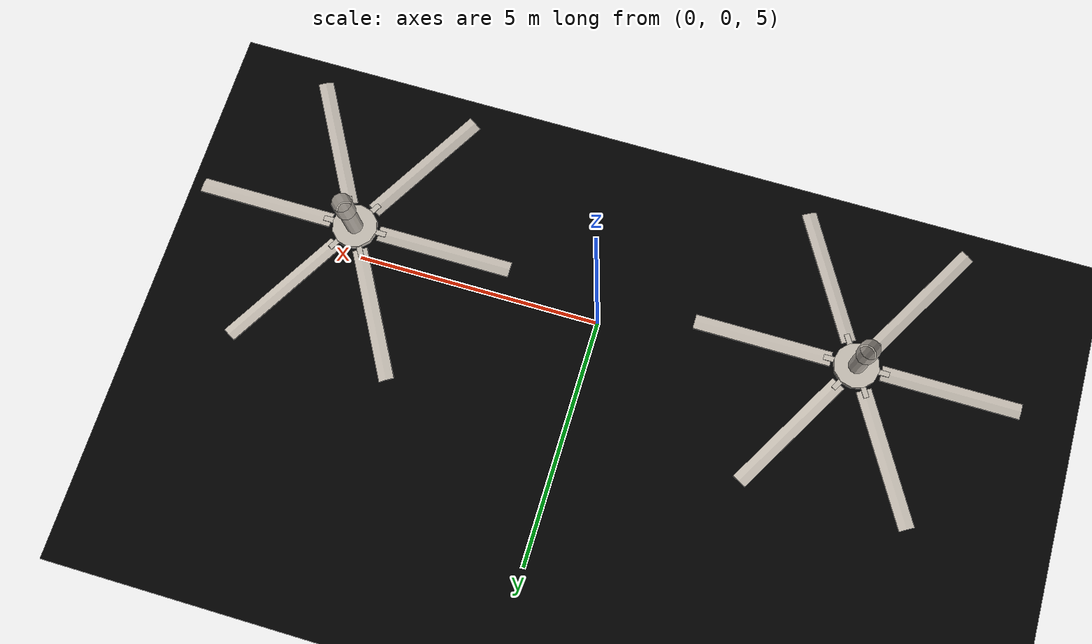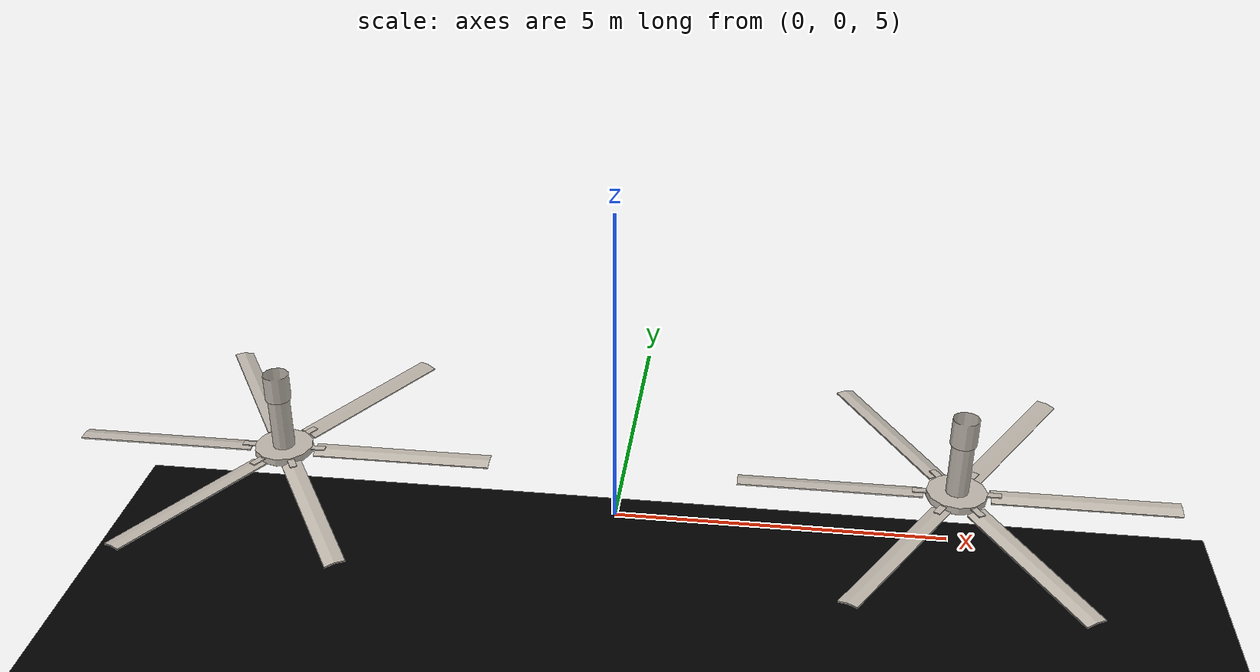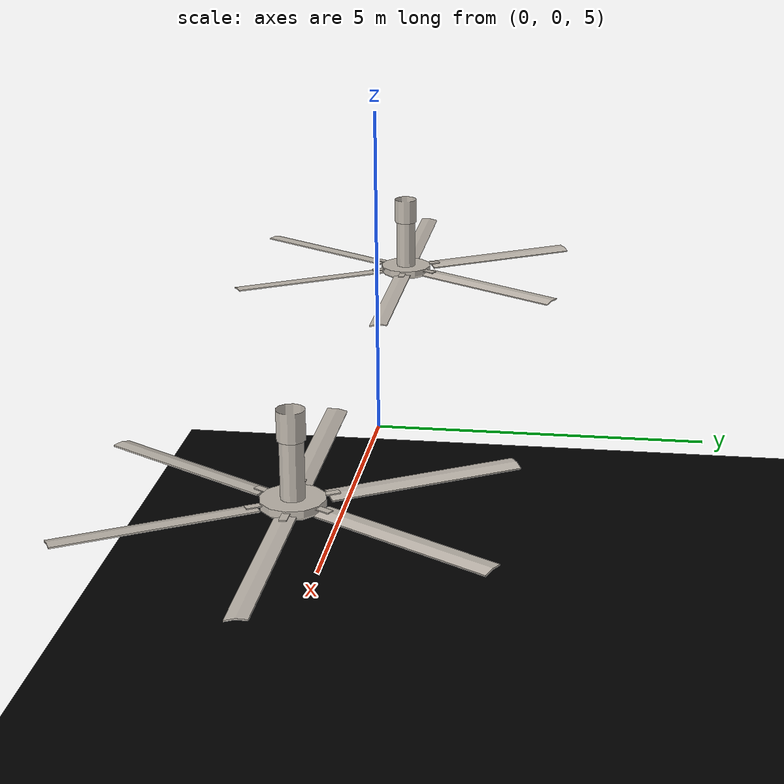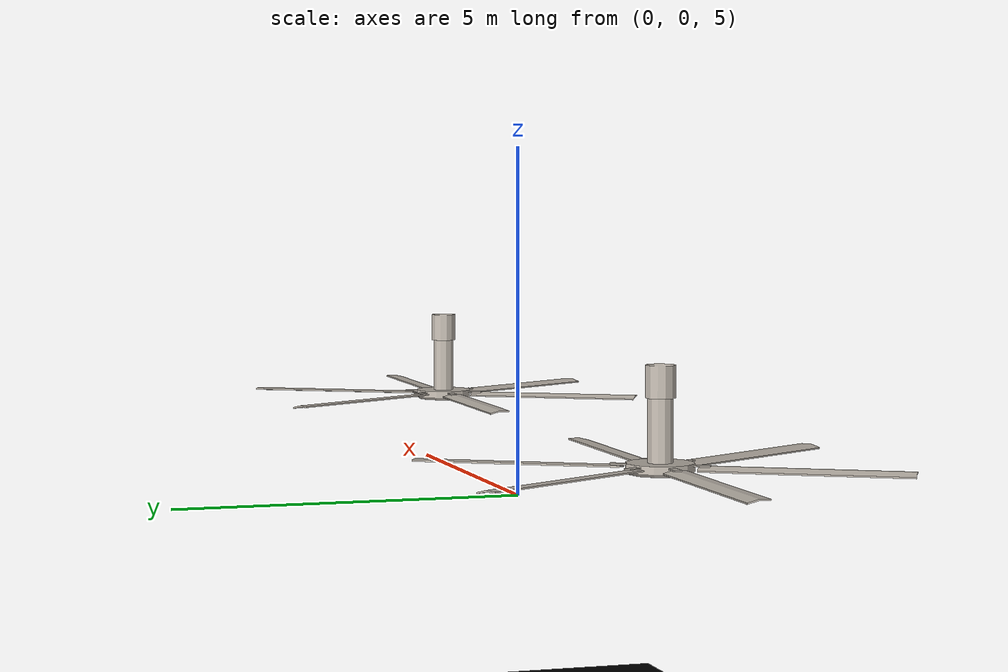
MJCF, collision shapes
<mujoco model="Depot">
  <compiler angle="radian" meshdir="assets/" texturedir="assets/"/>

  <visual>
    <headlight ambient="0.3 0.3 0.3"/>
  </visual>

  <asset>
    <texture type="2d" colorspace="linear" name="scene_tex_src_0" file="ROOF_Albedo.png"/>
    <texture type="2d" colorspace="linear" name="scene_tex_src_1" file="WALLS_Albedo.png"/>
    <texture type="2d" colorspace="linear" name="scene_tex_src_2" file="PILLERS_Albedo.png"/>
    <texture type="2d" colorspace="linear" name="scene_tex_src_3" file="FANS_Albedo.png"/>
    <texture type="2d" colorspace="linear" name="scene_tex_src_4" file="Window_WINDOW_BaseColor.png"/>
    <texture type="2d" colorspace="linear" name="scene_tex_src_5" file="INTERCOM_Albedo.png"/>
    <texture type="2d" colorspace="linear" name="scene_tex_src_6" file="FireAlarm_Albedo.png"/>
    <texture type="2d" colorspace="linear" name="scene_tex_src_7" file="FireAlarmPole_Albedo.png"/>
    <texture type="2d" colorspace="linear" name="scene_tex_src_8" file="Pipes_Albedo.png"/>
    <texture type="2d" colorspace="linear" name="scene_tex_src_9" file="STAIRS_Albedo.png"/>
    <texture type="2d" colorspace="linear" name="scene_tex_src_10" file="BOXSET_Albedo.png"/>
    <texture type="2d" colorspace="linear" name="scene_tex_src_11" file="FLOOR_Albedo.png"/>
    <texture type="2d" colorspace="linear" name="scene_tex_src_12" file="FanBack_FanBack_BaseColor.png"/>
    <texture type="2d" colorspace="linear" name="scene_tex_src_13" file="Crates_Crates_BaseColor.png"/>
    <material name="scene_mat_src_0" texture="scene_tex_src_0"/>
    <material name="scene_mat_src_1" texture="scene_tex_src_1"/>
    <material name="scene_mat_src_2" texture="scene_tex_src_2"/>
    <material name="scene_mat_src_3" texture="scene_tex_src_3"/>
    <material name="scene_mat_src_4" texture="scene_tex_src_4"/>
    <material name="scene_mat_src_5" texture="scene_tex_src_5"/>
    <material name="scene_mat_src_6" texture="scene_tex_src_6"/>
    <material name="scene_mat_src_7" texture="scene_tex_src_7"/>
    <material name="scene_mat_src_8" texture="scene_tex_src_8"/>
    <material name="scene_mat_src_9" texture="scene_tex_src_9"/>
    <material name="scene_mat_src_10" texture="scene_tex_src_10"/>
    <material name="scene_mat_src_11" texture="scene_tex_src_11"/>
    <material name="scene_mat_src_12" texture="scene_tex_src_12"/>
    <material name="scene_mat_src_13" texture="scene_tex_src_13"/>
    <mesh name="scene_Depot_main_ROOF_visual_vis" content_type="model/obj" file="Depot_main_ROOF_visual_vis.obj" inertia="shell"/>
    <mesh name="scene_Depot_main_WALLS_visual_vis" content_type="model/obj" file="Depot_main_WALLS_visual_vis.obj" inertia="shell"/>
    <mesh name="scene_Depot_main_PILLERS_visual_vis" content_type="model/obj" file="Depot_main_PILLERS_visual_vis.obj" inertia="shell"/>
    <mesh name="scene_Depot_main_FANS_visual_vis" content_type="model/obj" file="Depot_main_FANS_visual_vis.obj" inertia="shell"/>
    <mesh name="scene_Depot_main_WINDOW_visual_vis" content_type="model/obj" file="Depot_main_WINDOW_visual_vis.obj" inertia="shell"/>
    <mesh name="scene_Depot_main_INTERCOM_visual_vis" content_type="model/obj" file="Depot_main_INTERCOM_visual_vis.obj" inertia="shell"/>
    <mesh name="scene_Depot_main_FireAlarm_visual_vis" content_type="model/obj" file="Depot_main_FireAlarm_visual_vis.obj" inertia="shell"/>
    <mesh name="scene_Depot_main_FireAlarmPole_visual_vis" content_type="model/obj" file="Depot_main_FireAlarmPole_visual_vis.obj" inertia="shell"/>
    <mesh name="scene_Depot_main_Pipes_visual_vis" content_type="model/obj" file="Depot_main_Pipes_visual_vis.obj" inertia="shell"/>
    <mesh name="scene_Depot_main_STAIRS_visual_vis" content_type="model/obj" file="Depot_main_STAIRS_visual_vis.obj" inertia="shell"/>
    <mesh name="scene_Depot_main_BOXSET_visual_vis" content_type="model/obj" file="Depot_main_BOXSET_visual_vis.obj" inertia="shell"/>
    <mesh name="scene_Depot_main_FLOOR_visual_vis" content_type="model/obj" file="Depot_main_FLOOR_visual_vis.obj" inertia="shell"/>
    <mesh name="scene_Depot_main_FanBack_visual_vis" content_type="model/obj" file="Depot_main_FanBack_visual_vis.obj" inertia="shell"/>
    <mesh name="scene_Depot_main_crates_vis" content_type="model/obj" file="Depot_main_crates_vis.obj" inertia="shell"/>
    <mesh name="scene_Depot_Fan1_visual_000" content_type="model/obj" file="Depot_Fan1_visual_000.obj" inertia="shell"/>
    <mesh name="scene_Depot_Fan1_visual_001" content_type="model/obj" file="Depot_Fan1_visual_001.obj" inertia="shell"/>
    <mesh name="scene_Depot_Fan1_visual_002" content_type="model/obj" file="Depot_Fan1_visual_002.obj" inertia="shell"/>
    <mesh name="scene_Depot_Fan1_visual_003" content_type="model/obj" file="Depot_Fan1_visual_003.obj" inertia="shell"/>
    <mesh name="scene_Depot_Fan1_visual_004" content_type="model/obj" file="Depot_Fan1_visual_004.obj" inertia="shell"/>
    <mesh name="scene_Depot_Fan1_visual_005" content_type="model/obj" file="Depot_Fan1_visual_005.obj" inertia="shell"/>
    <mesh name="scene_Depot_Fan1_visual_006" content_type="model/obj" file="Depot_Fan1_visual_006.obj" inertia="shell"/>
    <mesh name="scene_Depot_Fan1_visual_007" content_type="model/obj" file="Depot_Fan1_visual_007.obj" inertia="shell"/>
    <mesh name="scene_Depot_Fan1_visual_008" content_type="model/obj" file="Depot_Fan1_visual_008.obj" inertia="shell"/>
    <mesh name="scene_Depot_Fan1_visual_009" content_type="model/obj" file="Depot_Fan1_visual_009.obj" inertia="shell"/>
    <mesh name="scene_Depot_Fan1_visual_010" content_type="model/obj" file="Depot_Fan1_visual_010.obj" inertia="shell"/>
    <mesh name="scene_Depot_Fan1_visual_011" content_type="model/obj" file="Depot_Fan1_visual_011.obj" inertia="shell"/>
    <mesh name="scene_Depot_Fan2_visual_000" content_type="model/obj" file="Depot_Fan2_visual_000.obj" inertia="shell"/>
    <mesh name="scene_Depot_Fan2_visual_001" content_type="model/obj" file="Depot_Fan2_visual_001.obj" inertia="shell"/>
    <mesh name="scene_Depot_Fan2_visual_002" content_type="model/obj" file="Depot_Fan2_visual_002.obj" inertia="shell"/>
    <mesh name="scene_Depot_Fan2_visual_003" content_type="model/obj" file="Depot_Fan2_visual_003.obj" inertia="shell"/>
    <mesh name="scene_Depot_Fan2_visual_004" content_type="model/obj" file="Depot_Fan2_visual_004.obj" inertia="shell"/>
    <mesh name="scene_Depot_Fan2_visual_005" content_type="model/obj" file="Depot_Fan2_visual_005.obj" inertia="shell"/>
    <mesh name="scene_Depot_Fan2_visual_006" content_type="model/obj" file="Depot_Fan2_visual_006.obj" inertia="shell"/>
    <mesh name="scene_Depot_Fan2_visual_007" content_type="model/obj" file="Depot_Fan2_visual_007.obj" inertia="shell"/>
    <mesh name="scene_Depot_Fan2_visual_008" content_type="model/obj" file="Depot_Fan2_visual_008.obj" inertia="shell"/>
    <mesh name="scene_Depot_Fan2_visual_009" content_type="model/obj" file="Depot_Fan2_visual_009.obj" inertia="shell"/>
    <mesh name="scene_Depot_Fan2_visual_010" content_type="model/obj" file="Depot_Fan2_visual_010.obj" inertia="shell"/>
    <mesh name="scene_Depot_Fan2_visual_011" content_type="model/obj" file="Depot_Fan2_visual_011.obj" inertia="shell"/>
  </asset>

  <worldbody>
    <geom name="scene_Depot_main_ROOF_visual_vis" type="mesh" contype="0" conaffinity="0" material="scene_mat_src_0" mesh="scene_Depot_main_ROOF_visual_vis"/>
    <geom name="scene_Depot_main_WALLS_visual_vis" type="mesh" contype="0" conaffinity="0" material="scene_mat_src_1" mesh="scene_Depot_main_WALLS_visual_vis"/>
    <geom name="scene_Depot_main_PILLERS_visual_vis" type="mesh" contype="0" conaffinity="0" material="scene_mat_src_2" mesh="scene_Depot_main_PILLERS_visual_vis"/>
    <geom name="scene_Depot_main_FANS_visual_vis" type="mesh" contype="0" conaffinity="0" material="scene_mat_src_3" mesh="scene_Depot_main_FANS_visual_vis"/>
    <geom name="scene_Depot_main_WINDOW_visual_vis" type="mesh" contype="0" conaffinity="0" material="scene_mat_src_4" mesh="scene_Depot_main_WINDOW_visual_vis"/>
    <geom name="scene_Depot_main_INTERCOM_visual_vis" type="mesh" contype="0" conaffinity="0" material="scene_mat_src_5" mesh="scene_Depot_main_INTERCOM_visual_vis"/>
    <geom name="scene_Depot_main_FireAlarm_visual_vis" type="mesh" contype="0" conaffinity="0" material="scene_mat_src_6" mesh="scene_Depot_main_FireAlarm_visual_vis"/>
    <geom name="scene_Depot_main_FireAlarmPole_visual_vis" type="mesh" contype="0" conaffinity="0" material="scene_mat_src_7" mesh="scene_Depot_main_FireAlarmPole_visual_vis"/>
    <geom name="scene_Depot_main_Pipes_visual_vis" type="mesh" contype="0" conaffinity="0" material="scene_mat_src_8" mesh="scene_Depot_main_Pipes_visual_vis"/>
    <geom name="scene_Depot_main_STAIRS_visual_vis" type="mesh" contype="0" conaffinity="0" material="scene_mat_src_9" mesh="scene_Depot_main_STAIRS_visual_vis"/>
    <geom name="scene_Depot_main_BOXSET_visual_vis" type="mesh" contype="0" conaffinity="0" material="scene_mat_src_10" mesh="scene_Depot_main_BOXSET_visual_vis"/>
    <geom name="scene_Depot_main_FLOOR_visual_vis" type="mesh" contype="0" conaffinity="0" material="scene_mat_src_11" mesh="scene_Depot_main_FLOOR_visual_vis"/>
    <geom name="scene_Depot_main_FanBack_visual_vis" type="mesh" contype="0" conaffinity="0" material="scene_mat_src_12" mesh="scene_Depot_main_FanBack_visual_vis"/>
    <geom name="scene_Depot_main_crates_vis" type="mesh" contype="0" conaffinity="0" material="scene_mat_src_13" mesh="scene_Depot_main_crates_vis"/>
    <geom name="scene_Depot_Fan1_visual_000" type="mesh" material="scene_mat_src_3" mesh="scene_Depot_Fan1_visual_000"/>
    <geom name="scene_Depot_Fan1_visual_001" type="mesh" material="scene_mat_src_3" mesh="scene_Depot_Fan1_visual_001"/>
    <geom name="scene_Depot_Fan1_visual_002" type="mesh" material="scene_mat_src_3" mesh="scene_Depot_Fan1_visual_002"/>
    <geom name="scene_Depot_Fan1_visual_003" type="mesh" material="scene_mat_src_3" mesh="scene_Depot_Fan1_visual_003"/>
    <geom name="scene_Depot_Fan1_visual_004" type="mesh" material="scene_mat_src_3" mesh="scene_Depot_Fan1_visual_004"/>
    <geom name="scene_Depot_Fan1_visual_005" type="mesh" material="scene_mat_src_3" mesh="scene_Depot_Fan1_visual_005"/>
    <geom name="scene_Depot_Fan1_visual_006" type="mesh" material="scene_mat_src_3" mesh="scene_Depot_Fan1_visual_006"/>
    <geom name="scene_Depot_Fan1_visual_007" type="mesh" material="scene_mat_src_3" mesh="scene_Depot_Fan1_visual_007"/>
    <geom name="scene_Depot_Fan1_visual_008" type="mesh" material="scene_mat_src_3" mesh="scene_Depot_Fan1_visual_008"/>
    <geom name="scene_Depot_Fan1_visual_009" type="mesh" material="scene_mat_src_3" mesh="scene_Depot_Fan1_visual_009"/>
    <geom name="scene_Depot_Fan1_visual_010" type="mesh" material="scene_mat_src_3" mesh="scene_Depot_Fan1_visual_010"/>
    <geom name="scene_Depot_Fan1_visual_011" type="mesh" material="scene_mat_src_3" mesh="scene_Depot_Fan1_visual_011"/>
    <geom name="scene_Depot_Fan2_visual_000" type="mesh" material="scene_mat_src_3" mesh="scene_Depot_Fan2_visual_000"/>
    <geom name="scene_Depot_Fan2_visual_001" type="mesh" material="scene_mat_src_3" mesh="scene_Depot_Fan2_visual_001"/>
    <geom name="scene_Depot_Fan2_visual_002" type="mesh" material="scene_mat_src_3" mesh="scene_Depot_Fan2_visual_002"/>
    <geom name="scene_Depot_Fan2_visual_003" type="mesh" material="scene_mat_src_3" mesh="scene_Depot_Fan2_visual_003"/>
    <geom name="scene_Depot_Fan2_visual_004" type="mesh" material="scene_mat_src_3" mesh="scene_Depot_Fan2_visual_004"/>
    <geom name="scene_Depot_Fan2_visual_005" type="mesh" material="scene_mat_src_3" mesh="scene_Depot_Fan2_visual_005"/>
    <geom name="scene_Depot_Fan2_visual_006" type="mesh" material="scene_mat_src_3" mesh="scene_Depot_Fan2_visual_006"/>
    <geom name="scene_Depot_Fan2_visual_007" type="mesh" material="scene_mat_src_3" mesh="scene_Depot_Fan2_visual_007"/>
    <geom name="scene_Depot_Fan2_visual_008" type="mesh" material="scene_mat_src_3" mesh="scene_Depot_Fan2_visual_008"/>
    <geom name="scene_Depot_Fan2_visual_009" type="mesh" material="scene_mat_src_3" mesh="scene_Depot_Fan2_visual_009"/>
    <geom name="scene_Depot_Fan2_visual_010" type="mesh" material="scene_mat_src_3" mesh="scene_Depot_Fan2_visual_010"/>
    <geom name="scene_Depot_Fan2_visual_011" type="mesh" material="scene_mat_src_3" mesh="scene_Depot_Fan2_visual_011"/>
    <geom name="floor" size="15.3 7.80005 0.05" pos="-0.0398 -0.13475 0" type="plane" group="3" friction="2" rgba="0 0 0 0"/>
    <light pos="-0.0398 -0.13475 3.9636" dir="0 0 -1" cutoff="90" exponent="0" diffuse="0.4 0.4 0.4"/>
  </worldbody>
</mujoco>
